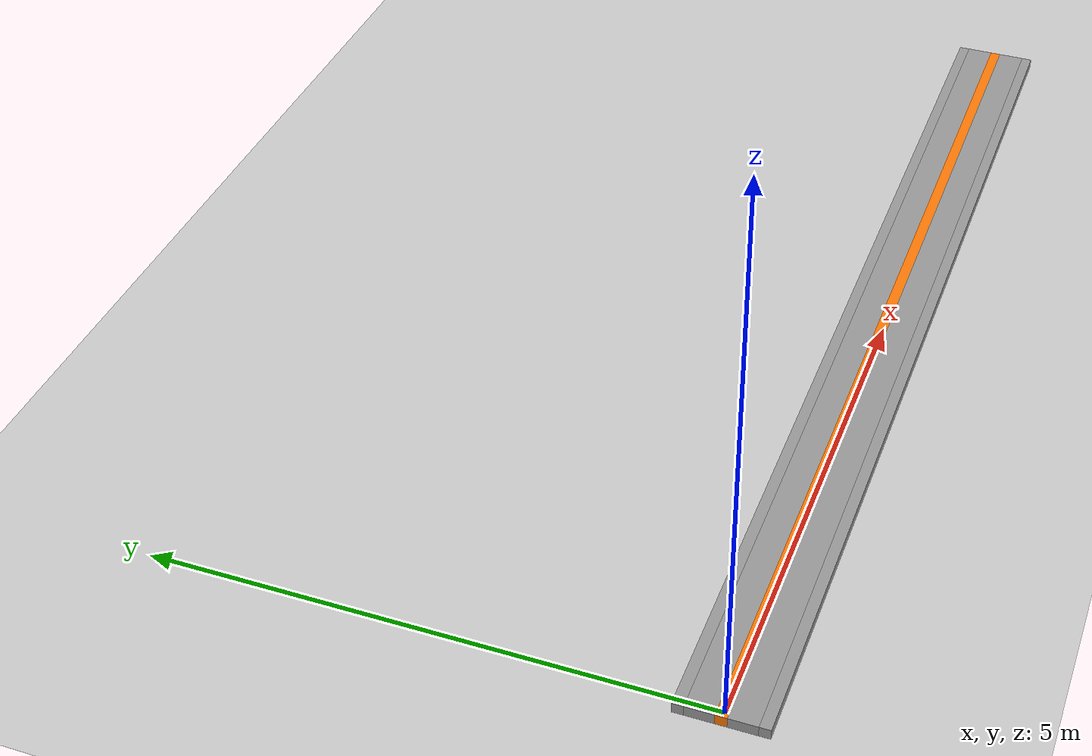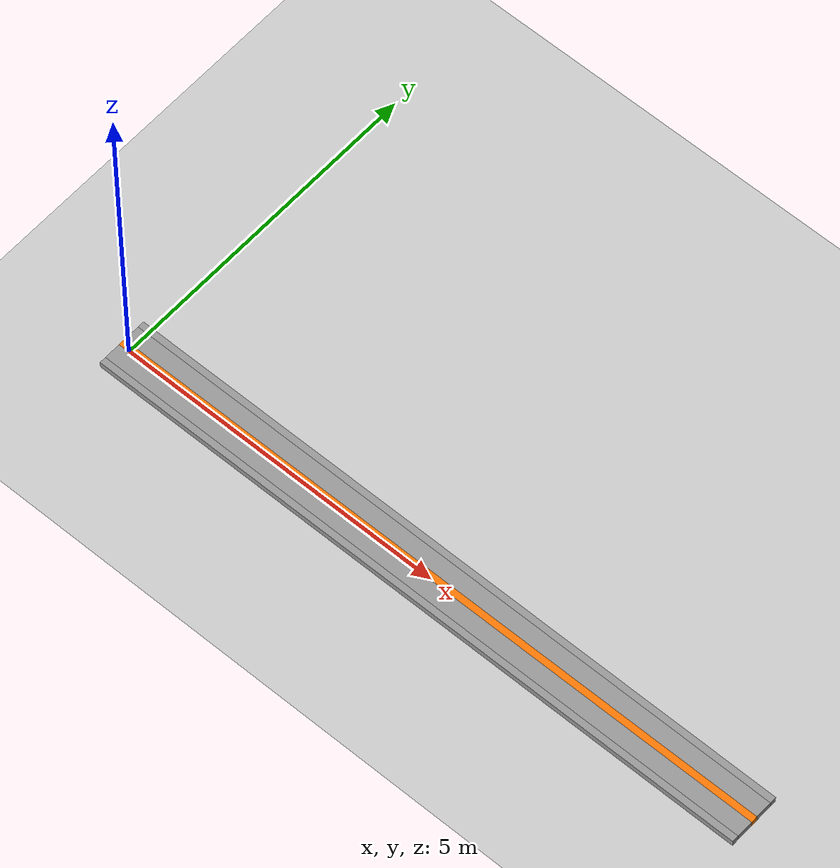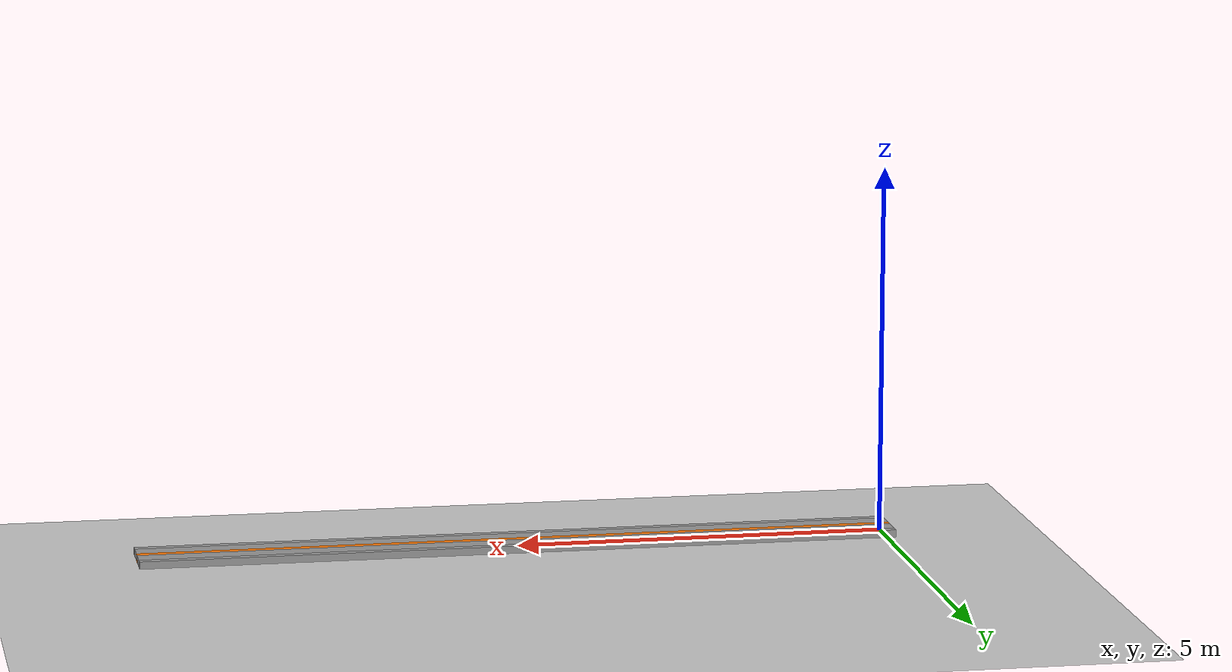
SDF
<sdf version="1.6">
 <world name="default">
  <light name="sun" type="directional">
   <pose>0 0 10 0 -0 0</pose>
   <diffuse>0.8 0.8 0.8 1</diffuse>
   <specular>0.2 0.2 0.2 1</specular>
   <attenuation>
    <range>1000</range>
    <constant>0.9</constant>
    <linear>0.01</linear>
    <quadratic>0.001</quadratic>
   </attenuation>
   <direction>-0.5 0.1 -0.9</direction>
  </light>
  <model name="ground_plane">
   <static>1</static>
   <link name="link">
    <collision name="collision">
     <geometry><plane><normal>0 0 1</normal><size>100 100</size></plane></geometry>
     <surface>
      <contact><collide_bitmask>65535</collide_bitmask></contact>
      <friction><ode><mu>100</mu><mu2>50</mu2></ode></friction>
     </surface>
    </collision>
    <visual name="visual">
     <cast_shadows>0</cast_shadows>
     <geometry><plane><normal>0 0 1</normal><size>100 100</size></plane></geometry>
     <material>
      <script><uri>file://media/materials/scripts/gazebo.material</uri><name>Gazebo/Grey</name></script>
     </material>
    </visual>
   </link>
  </model>
  <gravity>0 0 -9.8</gravity>
  <magnetic_field>6e-06 2.3e-05 -4.2e-05</magnetic_field>
  <atmosphere type="adiabatic"/>
  <physics name="default_physics" default="0" type="ode">
   <max_step_size>0.001</max_step_size>
   <real_time_factor>1</real_time_factor>
   <real_time_update_rate>1000</real_time_update_rate>
  </physics>
  <scene><ambient>0.4 0.4 0.4 1</ambient><background>0.7 0.7 0.7 1</background><shadows>1</shadows></scene>
  <audio><device>default</device></audio>
  <spherical_coordinates>
   <surface_model>EARTH_WGS84</surface_model>
   <latitude_deg>0</latitude_deg>
   <longitude_deg>0</longitude_deg>
   <elevation>0</elevation>
   <heading_deg>0</heading_deg>
  </spherical_coordinates>
  <model name="ROAD">
   <pose>5 0 0 0 -0 0</pose>
   <link name="Wall_0">
    <collision name="Wall_0_Collision">
     <geometry><box><size>10.25 0.25 0.1</size></box></geometry>
     <pose>0 0 0.05 0 -0 0</pose>
    </collision>
    <visual name="Wall_0_Visual">
     <pose>0 0 0.05 0 -0 0</pose>
     <geometry><box><size>10.25 0.25 0.1</size></box></geometry>
     <material>
      <script><uri>file://media/materials/scripts/gazebo.material</uri><name>Gazebo/Grey</name></script>
      <ambient>0 0 0 1</ambient>
     </material>
     <meta><layer>0</layer></meta>
    </visual>
    <pose>0 0.175 0 0 -0 0</pose>
   </link>
   <link name="Wall_10">
    <collision name="Wall_10_Collision">
     <geometry><box><size>10.25 0.1 0.1</size></box></geometry>
     <pose>0 0 0.05 0 -0 0</pose>
    </collision>
    <visual name="Wall_10_Visual">
     <pose>0 0 0.05 0 -0 0</pose>
     <geometry><box><size>10.25 0.1 0.1</size></box></geometry>
     <material>
      <script><uri>file://media/materials/scripts/gazebo.material</uri><name>Gazebo/Grey</name></script>
      <ambient>0.996078 0.47451 0.0196078 1</ambient>
     </material>
     <meta><layer>0</layer></meta>
    </visual>
   </link>
   <link name="Wall_2">
    <collision name="Wall_2_Collision">
     <geometry><box><size>10.25 0.1 0.1</size></box></geometry>
     <pose>0 0 0.05 0 -0 0</pose>
    </collision>
    <visual name="Wall_2_Visual">
     <pose>0 0 0.05 0 -0 0</pose>
     <geometry><box><size>10.25 0.1 0.1</size></box></geometry>
     <material>
      <script><uri>file://media/materials/scripts/gazebo.material</uri><name>Gazebo/Grey</name></script>
      <ambient>1 1 1 1</ambient>
     </material>
     <meta><layer>0</layer></meta>
    </visual>
    <pose>0 -0.35 0 0 -0 0</pose>
   </link>
   <link name="Wall_4">
    <collision name="Wall_4_Collision">
     <geometry><box><size>10.25 0.1 0.1</size></box></geometry>
     <pose>0 0 0.05 0 -0 0</pose>
    </collision>
    <visual name="Wall_4_Visual">
     <pose>0 0 0.05 0 -0 0</pose>
     <geometry><box><size>10.25 0.1 0.1</size></box></geometry>
     <material>
      <script><uri>file://media/materials/scripts/gazebo.material</uri><name>Gazebo/Grey</name></script>
      <ambient>1 1 1 1</ambient>
     </material>
     <meta><layer>0</layer></meta>
    </visual>
    <pose>0 0.35 0 0 -0 0</pose>
   </link>
   <link name="Wall_6">
    <collision name="Wall_6_Collision">
     <geometry><box><size>10.25 0.25 0.1</size></box></geometry>
     <pose>0 0 0.05 0 -0 0</pose>
    </collision>
    <visual name="Wall_6_Visual">
     <pose>0 0 0.05 0 -0 0</pose>
     <geometry><box><size>10.25 0.25 0.1</size></box></geometry>
     <material>
      <script><uri>file://media/materials/scripts/gazebo.material</uri><name>Gazebo/Grey</name></script>
      <ambient>0.180392 0.203922 0.211765 1</ambient>
     </material>
     <meta><layer>0</layer></meta>
    </visual>
    <pose>0 -0.175 0 0 -0 0</pose>
   </link>
   <static>1</static>
  </model>
 </world>
</sdf>
